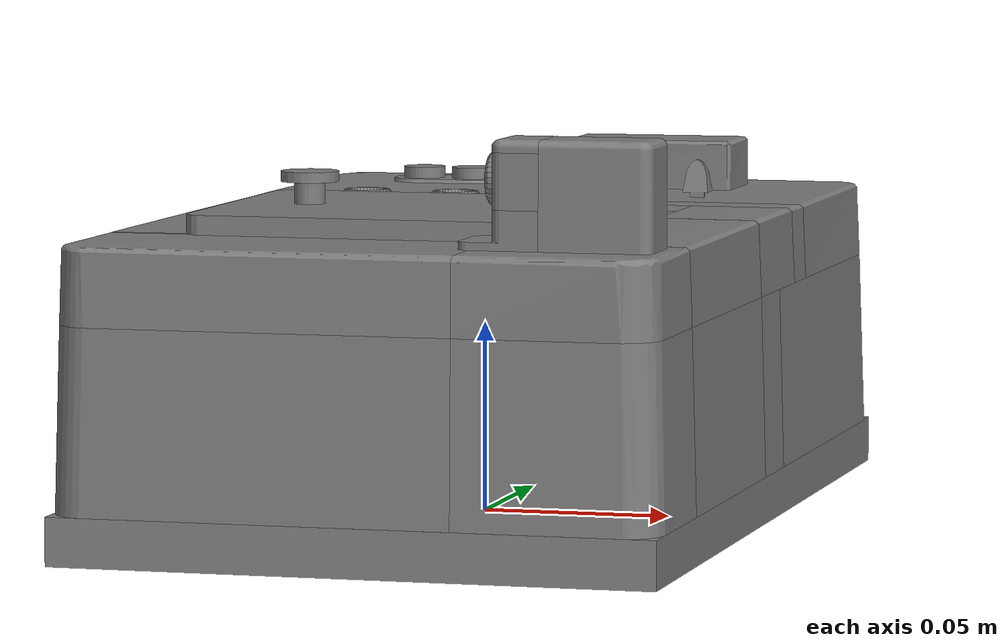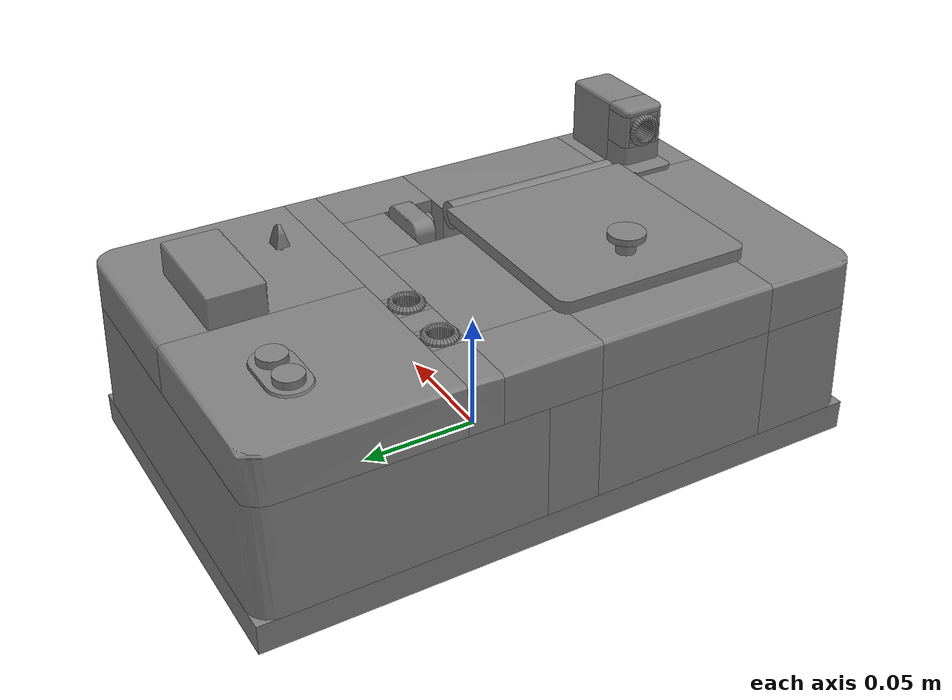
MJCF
<mujoco model="task_board">
    <compiler angle="radian" meshdir="../meshes/stl" autolimits="true" inertiafromgeom="false"/>
    <asset>
        <mesh name="task_board_part_1" file="task_board_part_1.stl"/>
        <mesh name="task_board_part_2" file="task_board_part_2.stl"/>
        <mesh name="task_board_part_3" file="task_board_part_3.stl"/>
        <mesh name="task_board_part_4" file="task_board_part_4.stl"/>
        <mesh name="task_board_part_5" file="task_board_part_5.stl"/>
        <mesh name="task_board_part_6" file="task_board_part_6.stl"/>
        <mesh name="task_board_part_7" file="task_board_part_7.stl"/>
        <mesh name="task_board_part_8" file="task_board_part_8.stl"/>
        <mesh name="task_board_part_9" file="task_board_part_9.stl"/>
        <mesh name="task_board_part_10" file="task_board_part_10.stl"/>
        <mesh name="task_board_part_11" file="task_board_part_11.stl"/>
        <mesh name="task_board_part_12" file="task_board_part_12.stl"/>
        <mesh name="task_board_part_13" file="task_board_part_13.stl"/>
        <mesh name="task_board_part_14" file="task_board_part_14.stl"/>
        <mesh name="task_board_part_15" file="task_board_part_15.stl"/>
        <mesh name="task_board_part_16" file="task_board_part_16.stl"/>
        <mesh name="task_board_part_17" file="task_board_part_17.stl"/>
        <mesh name="task_board_part_18" file="task_board_part_18.stl"/>
        <mesh name="task_board_part_19" file="task_board_part_19.stl"/>
        <mesh name="task_board_part_20" file="task_board_part_20.stl"/>
        <mesh name="task_board_part_21" file="task_board_part_21.stl"/>
        <mesh name="task_board_part_22" file="task_board_part_22.stl"/>
        <mesh name="task_board_part_23" file="task_board_part_23.stl"/>
        <mesh name="task_board_part_24" file="task_board_part_24.stl"/>
        <mesh name="task_board_part_25" file="task_board_part_25.stl"/>
        <mesh name="task_board_part_26" file="task_board_part_26.stl"/>
        <mesh name="task_board_part_27" file="task_board_part_27.stl"/>
        <mesh name="task_board_part_28" file="task_board_part_28.stl"/>
        <mesh name="task_board_part_29" file="task_board_part_29.stl"/>
        <mesh name="task_board_part_30" file="task_board_part_30.stl"/>
        <mesh name="task_board_part_31" file="task_board_part_31.stl"/>
        <mesh name="task_board_part_32" file="task_board_part_32.stl"/>
        <mesh name="task_board_part_33" file="task_board_part_33.stl"/>
        <mesh name="task_board_part_34" file="task_board_part_34.stl"/>
        <mesh name="task_board_part_35" file="task_board_part_35.stl"/>
        <mesh name="task_board_part_36" file="task_board_part_36.stl"/>
        <mesh name="task_board_part_37" file="task_board_part_37.stl"/>
        <mesh name="task_board_part_38" file="task_board_part_38.stl"/>
        <mesh name="task_board_part_39" file="task_board_part_39.stl"/>
        <mesh name="task_board_part_40" file="task_board_part_40.stl"/>
        <mesh name="task_board_part_41" file="task_board_part_41.stl"/>
        <mesh name="task_board_part_42" file="task_board_part_42.stl"/>
        <mesh name="task_board_clock" file="task_board_clock.stl"/>
        <mesh name="task_board_hole_side" file="task_board_hole_side.stl"/>
        <mesh name="task_board_lid" file="task_board_lid.stl"/>
        <mesh name="task_board_lid_hinge" file="task_board_lid_hinge.stl"/>
        <mesh name="task_board_slider" file="task_board_slider.stl"/>
        <mesh name="task_board_button" file="task_board_button.stl"/>
    </asset>
    <worldbody>
        <body name="task_board">
            <body name="task_board_main">
                <inertial mass="2.636007070541382" pos="0.0007858076132833958 0.007140896748751402 0.03861437365412712" quat="0.6954004764556885 -0.08408170938491821 -0.13692009449005127 0.700429379940033" diaginertia="0.01115888636559248 0.021166224032640457 0.0217230636626482"/>
                <geom type="box" pos="0 0 0.0062" size="0.077486 0.128209 0.0062" />
                <geom type="mesh" mesh="task_board_part_2"/>
                <geom type="mesh" mesh="task_board_part_3"/>
                <geom type="mesh" mesh="task_board_part_4"/>
                <geom type="mesh" mesh="task_board_part_5"/>
                <geom type="mesh" mesh="task_board_part_6"/>
                <geom type="mesh" mesh="task_board_part_7"/>
                <geom type="mesh" mesh="task_board_part_8"/>
                <geom type="mesh" mesh="task_board_part_9"/>
                <geom type="mesh" mesh="task_board_part_10"/>
                <geom type="mesh" mesh="task_board_part_11"/>
                <geom type="mesh" mesh="task_board_part_12"/>
                <geom type="mesh" mesh="task_board_part_13"/>
                <geom type="mesh" mesh="task_board_part_14"/>
                <geom type="mesh" mesh="task_board_part_15"/>
                <geom type="mesh" mesh="task_board_part_16"/>
                <geom type="mesh" mesh="task_board_part_17"/>
                <geom type="mesh" mesh="task_board_part_18"/>
                <geom type="mesh" mesh="task_board_part_19"/>
                <geom type="mesh" mesh="task_board_part_20"/>
                <geom type="mesh" mesh="task_board_part_21"/>
                <geom type="mesh" mesh="task_board_part_22"/>
                <geom type="mesh" mesh="task_board_part_23"/>
                <geom type="mesh" mesh="task_board_part_24"/>
                <geom type="mesh" mesh="task_board_part_25"/>
                <geom type="mesh" mesh="task_board_part_26"/>
                <geom type="mesh" mesh="task_board_part_27"/>
                <geom type="mesh" mesh="task_board_part_28"/>
                <geom type="mesh" mesh="task_board_part_29"/>
                <geom type="mesh" mesh="task_board_part_30"/>
                <geom type="mesh" mesh="task_board_part_31"/>
                <geom type="mesh" mesh="task_board_part_32"/>
                <geom type="mesh" mesh="task_board_part_33"/>
                <geom type="mesh" mesh="task_board_part_34"/>
                <geom type="mesh" mesh="task_board_part_35"/>
                <geom type="mesh" mesh="task_board_part_36"/>
                <geom type="mesh" mesh="task_board_part_37"/>
                <geom type="mesh" mesh="task_board_part_38"/>
                <geom type="mesh" mesh="task_board_part_39"/>
                <geom type="mesh" mesh="task_board_part_40"/>
                <geom type="mesh" mesh="task_board_part_41"/>
                <geom type="mesh" mesh="task_board_part_42"/>
                <body name="task_board_clock" pos="0.02361 0.09598 0.086058">
                    <inertial mass="0.014450108632445335" pos="-1.5404576458877273e-07 3.820331357928808e-07 1.0391339344550943e-07" quat="0.9999918937683105 -0.0021431820932775736 2.051398769253865e-05 -0.00341184064745903" diaginertia="8.666096391607425e-07 2.8100657800678164e-06 3.248445409553824e-06"/>
                    <geom type="mesh" mesh="task_board_clock"/>
                </body>
                <body name="task_board_hole_1" pos="-0.0191 0.039 0.0734">
                    <inertial mass="0.001326893107034266" pos="-2.1943561027140944e-19 8.837270100993977e-18 0.00035713426768779755" quat="0.5 0.5 -0.5 0.5" diaginertia="4.535419506623839e-08 4.661995589572143e-08 4.661996655386247e-08"/>
                    <geom type="mesh" mesh="task_board_hole_side"/>
                    <geom quat="0.995185 0 0 0.0980171" type="mesh" mesh="task_board_hole_side"/>
                    <geom quat="0.980785 0 0 0.19509" type="mesh" mesh="task_board_hole_side"/>
                    <geom quat="0.95694 0 0 0.290285" type="mesh" mesh="task_board_hole_side"/>
                    <geom quat="0.92388 0 0 0.382683" type="mesh" mesh="task_board_hole_side"/>
                    <geom quat="0.881921 0 0 0.471397" type="mesh" mesh="task_board_hole_side"/>
                    <geom quat="0.83147 0 0 0.55557" type="mesh" mesh="task_board_hole_side"/>
                    <geom quat="0.77301 0 0 0.634393" type="mesh" mesh="task_board_hole_side"/>
                    <geom quat="0.707107 0 0 0.707107" type="mesh" mesh="task_board_hole_side"/>
                    <geom quat="0.634393 0 0 0.77301" type="mesh" mesh="task_board_hole_side"/>
                    <geom quat="0.55557 0 0 0.83147" type="mesh" mesh="task_board_hole_side"/>
                    <geom quat="0.471397 0 0 0.881921" type="mesh" mesh="task_board_hole_side"/>
                    <geom quat="0.382683 0 0 0.92388" type="mesh" mesh="task_board_hole_side"/>
                    <geom quat="0.290285 0 0 0.95694" type="mesh" mesh="task_board_hole_side"/>
                    <geom quat="0.19509 0 0 0.980785" type="mesh" mesh="task_board_hole_side"/>
                    <geom quat="0.0980171 0 0 0.995185" type="mesh" mesh="task_board_hole_side"/>
                    <geom quat="0 0 0 1" type="mesh" mesh="task_board_hole_side"/>
                    <geom quat="-0.0980171 0 0 0.995185" type="mesh" mesh="task_board_hole_side"/>
                    <geom quat="-0.19509 0 0 0.980785" type="mesh" mesh="task_board_hole_side"/>
                    <geom quat="-0.290285 0 0 0.95694" type="mesh" mesh="task_board_hole_side"/>
                    <geom quat="-0.382683 0 0 0.92388" type="mesh" mesh="task_board_hole_side"/>
                    <geom quat="-0.471397 0 0 0.881921" type="mesh" mesh="task_board_hole_side"/>
                    <geom quat="-0.55557 0 0 0.83147" type="mesh" mesh="task_board_hole_side"/>
                    <geom quat="-0.634393 0 0 0.77301" type="mesh" mesh="task_board_hole_side"/>
                    <geom quat="-0.707107 0 0 0.707107" type="mesh" mesh="task_board_hole_side"/>
                    <geom quat="-0.77301 0 0 0.634393" type="mesh" mesh="task_board_hole_side"/>
                    <geom quat="-0.83147 0 0 0.55557" type="mesh" mesh="task_board_hole_side"/>
                    <geom quat="-0.881921 0 0 0.471397" type="mesh" mesh="task_board_hole_side"/>
                    <geom quat="-0.92388 0 0 0.382683" type="mesh" mesh="task_board_hole_side"/>
                    <geom quat="-0.95694 0 0 0.290285" type="mesh" mesh="task_board_hole_side"/>
                    <geom quat="-0.980785 0 0 0.19509" type="mesh" mesh="task_board_hole_side"/>
                    <geom quat="-0.995185 0 0 0.0980171" type="mesh" mesh="task_board_hole_side"/>
                </body>
                <body name="task_board_hole_2" pos="-0.044 0.039 0.0734">
                    <inertial mass="0.001326893107034266" pos="-2.1943561027140944e-19 8.837270100993977e-18 0.00035713426768779755" quat="0.5 0.5 -0.5 0.5" diaginertia="4.535419506623839e-08 4.661995589572143e-08 4.661996655386247e-08"/>
                    <geom type="mesh" mesh="task_board_hole_side"/>
                    <geom quat="0.995185 0 0 0.0980171" type="mesh" mesh="task_board_hole_side"/>
                    <geom quat="0.980785 0 0 0.19509" type="mesh" mesh="task_board_hole_side"/>
                    <geom quat="0.95694 0 0 0.290285" type="mesh" mesh="task_board_hole_side"/>
                    <geom quat="0.92388 0 0 0.382683" type="mesh" mesh="task_board_hole_side"/>
                    <geom quat="0.881921 0 0 0.471397" type="mesh" mesh="task_board_hole_side"/>
                    <geom quat="0.83147 0 0 0.55557" type="mesh" mesh="task_board_hole_side"/>
                    <geom quat="0.77301 0 0 0.634393" type="mesh" mesh="task_board_hole_side"/>
                    <geom quat="0.707107 0 0 0.707107" type="mesh" mesh="task_board_hole_side"/>
                    <geom quat="0.634393 0 0 0.77301" type="mesh" mesh="task_board_hole_side"/>
                    <geom quat="0.55557 0 0 0.83147" type="mesh" mesh="task_board_hole_side"/>
                    <geom quat="0.471397 0 0 0.881921" type="mesh" mesh="task_board_hole_side"/>
                    <geom quat="0.382683 0 0 0.92388" type="mesh" mesh="task_board_hole_side"/>
                    <geom quat="0.290285 0 0 0.95694" type="mesh" mesh="task_board_hole_side"/>
                    <geom quat="0.19509 0 0 0.980785" type="mesh" mesh="task_board_hole_side"/>
                    <geom quat="0.0980171 0 0 0.995185" type="mesh" mesh="task_board_hole_side"/>
                    <geom quat="0 0 0 1" type="mesh" mesh="task_board_hole_side"/>
                    <geom quat="-0.0980171 0 0 0.995185" type="mesh" mesh="task_board_hole_side"/>
                    <geom quat="-0.19509 0 0 0.980785" type="mesh" mesh="task_board_hole_side"/>
                    <geom quat="-0.290285 0 0 0.95694" type="mesh" mesh="task_board_hole_side"/>
                    <geom quat="-0.382683 0 0 0.92388" type="mesh" mesh="task_board_hole_side"/>
                    <geom quat="-0.471397 0 0 0.881921" type="mesh" mesh="task_board_hole_side"/>
                    <geom quat="-0.55557 0 0 0.83147" type="mesh" mesh="task_board_hole_side"/>
                    <geom quat="-0.634393 0 0 0.77301" type="mesh" mesh="task_board_hole_side"/>
                    <geom quat="-0.707107 0 0 0.707107" type="mesh" mesh="task_board_hole_side"/>
                    <geom quat="-0.77301 0 0 0.634393" type="mesh" mesh="task_board_hole_side"/>
                    <geom quat="-0.83147 0 0 0.55557" type="mesh" mesh="task_board_hole_side"/>
                    <geom quat="-0.881921 0 0 0.471397" type="mesh" mesh="task_board_hole_side"/>
                    <geom quat="-0.92388 0 0 0.382683" type="mesh" mesh="task_board_hole_side"/>
                    <geom quat="-0.95694 0 0 0.290285" type="mesh" mesh="task_board_hole_side"/>
                    <geom quat="-0.980785 0 0 0.19509" type="mesh" mesh="task_board_hole_side"/>
                    <geom quat="-0.995185 0 0 0.0980171" type="mesh" mesh="task_board_hole_side"/>
                </body>
                <body name="task_board_hole_3" pos="0.037334 -0.102 0.0963" quat="0.707107 0 -0.707107 0">
                    <inertial mass="0.001326893107034266" pos="-2.1943561027140944e-19 8.837270100993977e-18 0.00035713426768779755" quat="0.5 0.5 -0.5 0.5" diaginertia="4.535419506623839e-08 4.661995589572143e-08 4.661996655386247e-08"/>
                    <geom type="mesh" mesh="task_board_hole_side"/>
                    <geom quat="0.995185 0 0 0.0980171" type="mesh" mesh="task_board_hole_side"/>
                    <geom quat="0.980785 0 0 0.19509" type="mesh" mesh="task_board_hole_side"/>
                    <geom quat="0.95694 0 0 0.290285" type="mesh" mesh="task_board_hole_side"/>
                    <geom quat="0.92388 0 0 0.382683" type="mesh" mesh="task_board_hole_side"/>
                    <geom quat="0.881921 0 0 0.471397" type="mesh" mesh="task_board_hole_side"/>
                    <geom quat="0.83147 0 0 0.55557" type="mesh" mesh="task_board_hole_side"/>
                    <geom quat="0.77301 0 0 0.634393" type="mesh" mesh="task_board_hole_side"/>
                    <geom quat="0.707107 0 0 0.707107" type="mesh" mesh="task_board_hole_side"/>
                    <geom quat="0.634393 0 0 0.77301" type="mesh" mesh="task_board_hole_side"/>
                    <geom quat="0.55557 0 0 0.83147" type="mesh" mesh="task_board_hole_side"/>
                    <geom quat="0.471397 0 0 0.881921" type="mesh" mesh="task_board_hole_side"/>
                    <geom quat="0.382683 0 0 0.92388" type="mesh" mesh="task_board_hole_side"/>
                    <geom quat="0.290285 0 0 0.95694" type="mesh" mesh="task_board_hole_side"/>
                    <geom quat="0.19509 0 0 0.980785" type="mesh" mesh="task_board_hole_side"/>
                    <geom quat="0.0980171 0 0 0.995185" type="mesh" mesh="task_board_hole_side"/>
                    <geom quat="0 0 0 1" type="mesh" mesh="task_board_hole_side"/>
                    <geom quat="-0.0980171 0 0 0.995185" type="mesh" mesh="task_board_hole_side"/>
                    <geom quat="-0.19509 0 0 0.980785" type="mesh" mesh="task_board_hole_side"/>
                    <geom quat="-0.290285 0 0 0.95694" type="mesh" mesh="task_board_hole_side"/>
                    <geom quat="-0.382683 0 0 0.92388" type="mesh" mesh="task_board_hole_side"/>
                    <geom quat="-0.471397 0 0 0.881921" type="mesh" mesh="task_board_hole_side"/>
                    <geom quat="-0.55557 0 0 0.83147" type="mesh" mesh="task_board_hole_side"/>
                    <geom quat="-0.634393 0 0 0.77301" type="mesh" mesh="task_board_hole_side"/>
                    <geom quat="-0.707107 0 0 0.707107" type="mesh" mesh="task_board_hole_side"/>
                    <geom quat="-0.77301 0 0 0.634393" type="mesh" mesh="task_board_hole_side"/>
                    <geom quat="-0.83147 0 0 0.55557" type="mesh" mesh="task_board_hole_side"/>
                    <geom quat="-0.881921 0 0 0.471397" type="mesh" mesh="task_board_hole_side"/>
                    <geom quat="-0.92388 0 0 0.382683" type="mesh" mesh="task_board_hole_side"/>
                    <geom quat="-0.95694 0 0 0.290285" type="mesh" mesh="task_board_hole_side"/>
                    <geom quat="-0.980785 0 0 0.19509" type="mesh" mesh="task_board_hole_side"/>
                    <geom quat="-0.995185 0 0 0.0980171" type="mesh" mesh="task_board_hole_side"/>
                </body>
                <body name="task_board_lid" pos="0.033026 -0.0472 0.079405">
                    <joint name="task_board_lid_joint" pos="0 0 0" axis="0 1 0" range="0 2.07293"/>
                    <inertial mass="0.043239474296569824" pos="-0.03705034404993057 9.640214102546452e-07 0.0020469322334975004" quat="0.999768853187561 1.7492717461209395e-06 0.021500125527381897 -2.631262395880185e-05" diaginertia="2.4859382392605767e-05 9.401317947776988e-05 0.00011849300790345296"/>
                    <geom type="mesh" mesh="task_board_lid"/>
                    <geom type="mesh" mesh="task_board_lid_hinge"/>
                    <body name="task_board_lid_knob" pos="-0.066776 0 0.010587">
                        <geom size="0.004 0.003" pos="0 0 -0.00255" type="cylinder"/>
                        <geom size="0.007486 0.00135" pos="0 0 0.00155" type="cylinder"/>
                    </body>
                </body>
                <body name="task_board_slider" pos="0.04301 0.061594 0.082959">
                    <joint name="task_board_slider_joint" pos="0 0 0" axis="1 0 0" type="slide" range="-0.025 0.01" damping="0.5"/>
                    <inertial mass="0.00019952877482865006" pos="-5.624972709838971e-11 -8.28391577556431e-10 3.68913427584161e-10" quat="-0.5004615187644958 0.5004618167877197 0.4995373487472534 0.49953848123550415" diaginertia="8.591624078846394e-10 1.873412092123772e-09 2.1721899834403757e-09"/>
                    <geom type="mesh" mesh="task_board_slider"/>
                </body>
                <body name="task_board_button_1" pos="-0.043957 0.09625 0.0835" gravcomp="1">
                    <joint name="task_board_button_1_joint" pos="0 0 0" axis="0 0 1" type="slide" range="-0.003 0" stiffness="1" springref="0"/>
                    <inertial mass="0.0003199282509740442" pos="6.059810783994401e-20 3.0299053919972006e-20 -0.001550000160932541" quat="0.24415282905101776 2.3798252988898155e-18 -9.452293775678179e-18 0.9697367548942566" diaginertia="3.6523064572691055e-09 3.6523064572691055e-09 5.25494003866811e-09"/>
                    <geom type="mesh" mesh="task_board_button"/>
                </body>
                <body name="task_board_button_2" pos="-0.02995 0.09625 0.0835" gravcomp="1">
                    <joint name="task_board_button_2_joint" pos="0 0 0" axis="0 0 1" type="slide" range="-0.003 0" stiffness="1" springref="0"/>
                    <inertial mass="0.0003199282509740442" pos="6.059810783994401e-20 3.0299053919972006e-20 -0.001550000160932541" quat="0.24415282905101776 2.3798252988898155e-18 -9.452293775678179e-18 0.9697367548942566" diaginertia="3.6523064572691055e-09 3.6523064572691055e-09 5.25494003866811e-09"/>
                    <geom type="mesh" mesh="task_board_button"/>
                </body>
            </body>
        </body>
    </worldbody>
    <equality/>
    <contact>
        <exclude body1="task_board_lid" body2="task_board_main"/>
        <exclude body1="task_board_slider" body2="task_board_main"/>
        <exclude body1="task_board_button_1" body2="task_board_main"/>
        <exclude body1="task_board_button_2" body2="task_board_main"/>
        <exclude body1="task_board_button_1" body2="task_board_clock"/>
        <exclude body1="task_board_button_1" body2="task_board_hole_1"/>
        <exclude body1="task_board_button_1" body2="task_board_hole_2"/>
        <exclude body1="task_board_button_1" body2="task_board_hole_3"/>
        <exclude body1="task_board_button_1" body2="task_board_lid_knob"/>
        <exclude body1="task_board_button_2" body2="task_board_clock"/>
        <exclude body1="task_board_button_2" body2="task_board_hole_1"/>
        <exclude body1="task_board_button_2" body2="task_board_hole_2"/>
        <exclude body1="task_board_button_2" body2="task_board_hole_3"/>
        <exclude body1="task_board_button_2" body2="task_board_lid_knob"/>
        <exclude body1="task_board_lid" body2="task_board_clock"/>
        <exclude body1="task_board_lid" body2="task_board_hole_1"/>
        <exclude body1="task_board_lid" body2="task_board_hole_2"/>
        <exclude body1="task_board_lid" body2="task_board_hole_3"/>
        <exclude body1="task_board_lid" body2="task_board_lid_knob"/>
        <exclude body1="task_board_main" body2="task_board_lid_knob"/>
        <exclude body1="task_board_slider" body2="task_board_clock"/>
        <exclude body1="task_board_slider" body2="task_board_hole_1"/>
        <exclude body1="task_board_slider" body2="task_board_hole_2"/>
        <exclude body1="task_board_slider" body2="task_board_hole_3"/>
        <exclude body1="task_board_slider" body2="task_board_lid_knob"/>
    </contact>
</mujoco>
